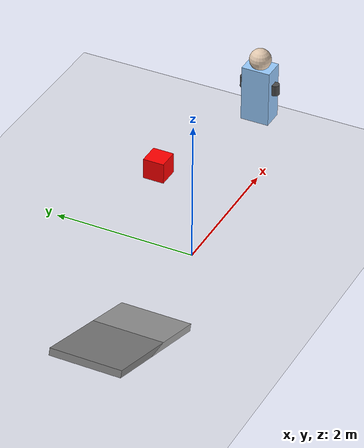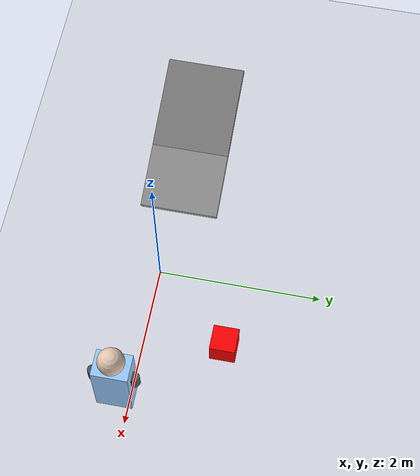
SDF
<sdf version="1.7">
 <world name="humanoid_world">
  <physics type="ode">
   <max_step_size>0.001</max_step_size>
   <real_time_factor>1.0</real_time_factor>
   <real_time_update_rate>1000.0</real_time_update_rate>
   <gravity>0 0 -9.8</gravity>
   <ode>
    <solver><type>quick</type><iters>10</iters><sor>1.3</sor></solver>
    <constraints>
     <cfm>0.000001</cfm>
     <erp>0.2</erp>
     <contact_max_correcting_vel>100.0</contact_max_correcting_vel>
     <contact_surface_layer>0.001</contact_surface_layer>
    </constraints>
   </ode>
  </physics>
  <include><uri>model://ground_plane</uri></include>
  <include><uri>model://sun</uri></include>
  <ambient>0.4 0.4 0.4 1</ambient>
  <background>0.7 0.7 0.7 1</background>
  <model name="embedded_humanoid">
   <pose>2 0 1.0 0 0 0</pose>
   <link name="torso">
    <pose>0 0 0.4 0 0 0</pose>
    <inertial>
     <mass>10.0</mass>
     <inertia><ixx>0.8</ixx><ixy>0.0</ixy><ixz>0.0</ixz><iyy>0.8</iyy><iyz>0.0</iyz><izz>0.4</izz></inertia>
    </inertial>
    <visual name="torso_visual">
     <geometry><box><size>0.3 0.4 0.8</size></box></geometry>
     <material><ambient>0.6 0.8 1.0 1</ambient><diffuse>0.6 0.8 1.0 1</diffuse></material>
    </visual>
    <collision name="torso_collision"><geometry><box><size>0.3 0.4 0.8</size></box></geometry></collision>
   </link>
   <link name="head">
    <pose>0 0 0.9 0 0 0</pose>
    <inertial>
     <mass>2.0</mass>
     <inertia><ixx>0.02</ixx><ixy>0.0</ixy><ixz>0.0</ixz><iyy>0.02</iyy><iyz>0.0</iyz><izz>0.02</izz></inertia>
    </inertial>
    <visual name="head_visual">
     <geometry><sphere><radius>0.15</radius></sphere></geometry>
     <material><ambient>0.9 0.8 0.7 1</ambient><diffuse>0.9 0.8 0.7 1</diffuse></material>
    </visual>
    <collision name="head_collision"><geometry><sphere><radius>0.15</radius></sphere></geometry></collision>
   </link>
   <joint name="neck_joint" type="revolute">
    <parent>torso</parent>
    <child>head</child>
    <axis>
     <xyz>0 0 1</xyz>
     <limit><lower>-0.5</lower><upper>0.5</upper><effort>10</effort><velocity>2</velocity></limit>
     <dynamics><damping>0.5</damping><friction>0.1</friction></dynamics>
    </axis>
    <pose>0 0 0.4 0 0 0</pose>
   </joint>
   <link name="left_shoulder">
    <pose>0 0.225 0.5 0 0 0</pose>
    <inertial>
     <mass>1.5</mass>
     <inertia><ixx>0.01</ixx><ixy>0.0</ixy><ixz>0.0</ixz><iyy>0.01</iyy><iyz>0.0</iyz><izz>0.01</izz></inertia>
    </inertial>
    <visual name="left_shoulder_visual">
     <geometry><cylinder><length>0.15</length><radius>0.06</radius></cylinder></geometry>
     <material><ambient>0.3 0.3 0.3 1</ambient><diffuse>0.3 0.3 0.3 1</diffuse></material>
    </visual>
    <collision name="left_shoulder_collision">
     <geometry><cylinder><length>0.15</length><radius>0.06</radius></cylinder></geometry>
    </collision>
   </link>
   <joint name="left_shoulder_joint" type="revolute">
    <parent>torso</parent>
    <child>left_shoulder</child>
    <axis>
     <xyz>0 1 0</xyz>
     <limit><lower>-1.57</lower><upper>1.57</upper><effort>100</effort><velocity>2</velocity></limit>
     <dynamics><damping>1.0</damping><friction>0.5</friction></dynamics>
    </axis>
   </joint>
   <link name="left_upper_arm">
    <pose>0 -0.1 0.5 0 0 0</pose>
    <inertial>
     <mass>1.5</mass>
     <inertia><ixx>0.02</ixx><ixy>0.0</ixy><ixz>0.0</ixz><iyy>0.02</iyy><iyz>0.0</iyz><izz>0.005</izz></inertia>
    </inertial>
    <visual name="left_upper_arm_visual">
     <geometry><cylinder><length>0.3</length><radius>0.04</radius></cylinder></geometry>
     <material><ambient>0.7 0.7 0.7 1</ambient><diffuse>0.7 0.7 0.7 1</diffuse></material>
    </visual>
    <collision name="left_upper_arm_collision">
     <geometry><cylinder><length>0.3</length><radius>0.04</radius></cylinder></geometry>
    </collision>
   </link>
   <joint name="left_elbow_joint" type="revolute">
    <parent>left_shoulder</parent>
    <child>left_upper_arm</child>
    <axis>
     <xyz>0 1 0</xyz>
     <limit><lower>-2.36</lower><upper>2.36</upper><effort>100</effort><velocity>1.5</velocity></limit>
     <dynamics><damping>0.8</damping><friction>0.3</friction></dynamics>
    </axis>
   </joint>
   <link name="right_shoulder">
    <pose>0 -0.225 0.5 0 0 0</pose>
    <inertial>
     <mass>1.5</mass>
     <inertia><ixx>0.01</ixx><ixy>0.0</ixy><ixz>0.0</ixz><iyy>0.01</iyy><iyz>0.0</iyz><izz>0.01</izz></inertia>
    </inertial>
    <visual name="right_shoulder_visual">
     <geometry><cylinder><length>0.15</length><radius>0.06</radius></cylinder></geometry>
     <material><ambient>0.3 0.3 0.3 1</ambient><diffuse>0.3 0.3 0.3 1</diffuse></material>
    </visual>
    <collision name="right_shoulder_collision">
     <geometry><cylinder><length>0.15</length><radius>0.06</radius></cylinder></geometry>
    </collision>
   </link>
   <joint name="right_shoulder_joint" type="revolute">
    <parent>torso</parent>
    <child>right_shoulder</child>
    <axis>
     <xyz>0 1 0</xyz>
     <limit><lower>-1.57</lower><upper>1.57</upper><effort>100</effort><velocity>2</velocity></limit>
     <dynamics><damping>1.0</damping><friction>0.5</friction></dynamics>
    </axis>
   </joint>
   <link name="right_upper_arm">
    <pose>0 0.1 0.5 0 0 0</pose>
    <inertial>
     <mass>1.5</mass>
     <inertia><ixx>0.02</ixx><ixy>0.0</ixy><ixz>0.0</ixz><iyy>0.02</iyy><iyz>0.0</iyz><izz>0.005</izz></inertia>
    </inertial>
    <visual name="right_upper_arm_visual">
     <geometry><cylinder><length>0.3</length><radius>0.04</radius></cylinder></geometry>
     <material><ambient>0.7 0.7 0.7 1</ambient><diffuse>0.7 0.7 0.7 1</diffuse></material>
    </visual>
    <collision name="right_upper_arm_collision">
     <geometry><cylinder><length>0.3</length><radius>0.04</radius></cylinder></geometry>
    </collision>
   </link>
   <joint name="right_elbow_joint" type="revolute">
    <parent>right_shoulder</parent>
    <child>right_upper_arm</child>
    <axis>
     <xyz>0 1 0</xyz>
     <limit><lower>-2.36</lower><upper>2.36</upper><effort>100</effort><velocity>1.5</velocity></limit>
     <dynamics><damping>0.8</damping><friction>0.3</friction></dynamics>
    </axis>
   </joint>
   <gazebo reference="torso">
    <material>Gazebo/Blue</material>
    <mu1>0.2</mu1>
    <mu2>0.2</mu2>
    <kp>1000000.0</kp>
    <kd>1.0</kd>
   </gazebo>
   <gazebo reference="head">
    <material>Gazebo/Yellow</material>
    <mu1>0.2</mu1>
    <mu2>0.2</mu2>
    <kp>1000000.0</kp>
    <kd>1.0</kd>
   </gazebo>
   <gazebo reference="left_shoulder">
    <material>Gazebo/Black</material>
    <mu1>0.2</mu1>
    <mu2>0.2</mu2>
    <kp>1000000.0</kp>
    <kd>1.0</kd>
   </gazebo>
   <gazebo reference="left_upper_arm">
    <material>Gazebo/Gray</material>
    <mu1>0.2</mu1>
    <mu2>0.2</mu2>
    <kp>1000000.0</kp>
    <kd>1.0</kd>
   </gazebo>
   <gazebo reference="right_shoulder">
    <material>Gazebo/Black</material>
    <mu1>0.2</mu1>
    <mu2>0.2</mu2>
    <kp>1000000.0</kp>
    <kd>1.0</kd>
   </gazebo>
   <gazebo reference="right_upper_arm">
    <material>Gazebo/Gray</material>
    <mu1>0.2</mu1>
    <mu2>0.2</mu2>
    <kp>1000000.0</kp>
    <kd>1.0</kd>
   </gazebo>
  </model>
  <model name="interaction_box">
   <pose>1 1 0.5 0 0 0</pose>
   <link name="link">
    <visual name="visual">
     <geometry><box><size>0.3 0.3 0.3</size></box></geometry>
     <material><ambient>1 0 0 1</ambient><diffuse>1 0 0 1</diffuse></material>
    </visual>
    <collision name="collision"><geometry><box><size>0.3 0.3 0.3</size></box></geometry></collision>
    <inertial>
     <mass>1.0</mass>
     <inertia><ixx>0.015</ixx><ixy>0</ixy><ixz>0</ixz><iyy>0.015</iyy><iyz>0</iyz><izz>0.015</izz></inertia>
    </inertial>
   </link>
  </model>
  <model name="ramp">
   <pose>-2 0 0 0 0.3 0</pose>
   <link name="ramp_link">
    <visual name="visual">
     <geometry><box><size>2.0 1.0 0.1</size></box></geometry>
     <material><ambient>0.5 0.5 0.5 1</ambient><diffuse>0.5 0.5 0.5 1</diffuse></material>
    </visual>
    <collision name="collision"><geometry><box><size>2.0 1.0 0.1</size></box></geometry></collision>
    <inertial>
     <mass>10.0</mass>
     <inertia><ixx>1.08</ixx><ixy>0</ixy><ixz>0</ixz><iyy>0.83</iyy><iyz>0</iyz><izz>0.25</izz></inertia>
    </inertial>
   </link>
  </model>
 </world>
</sdf>
